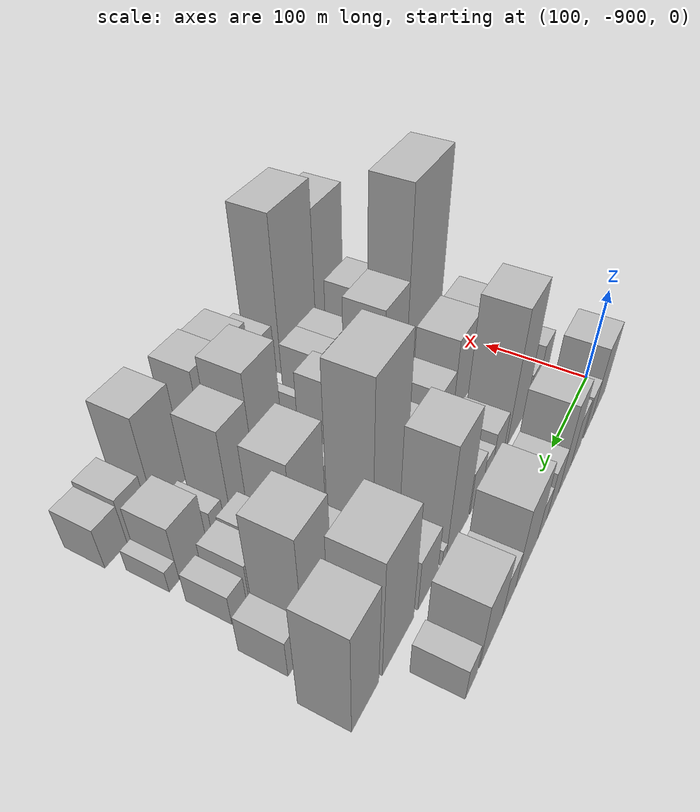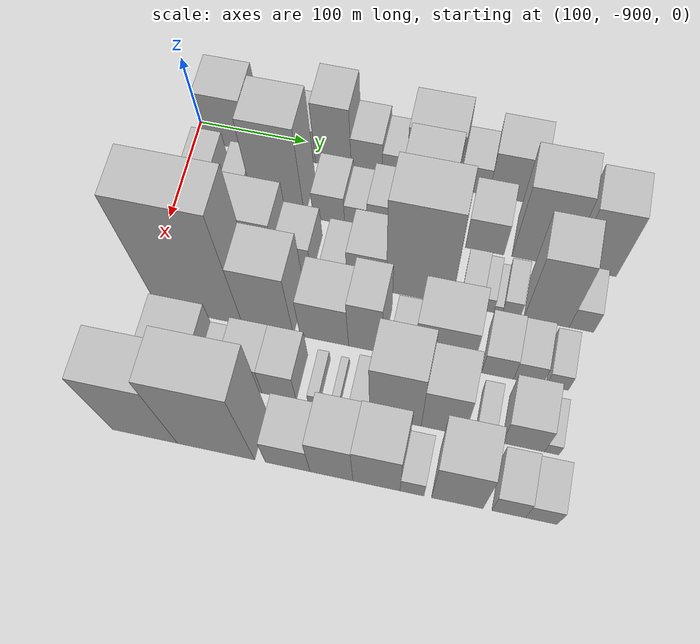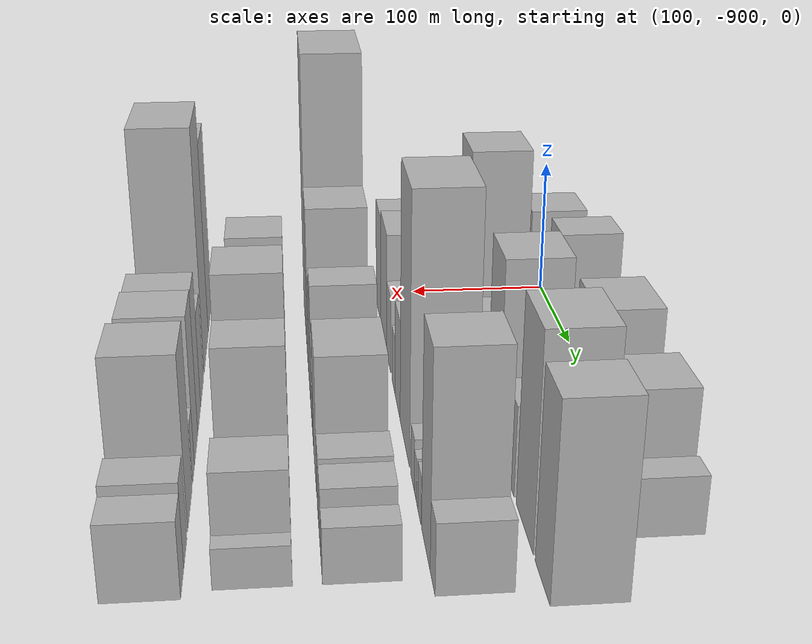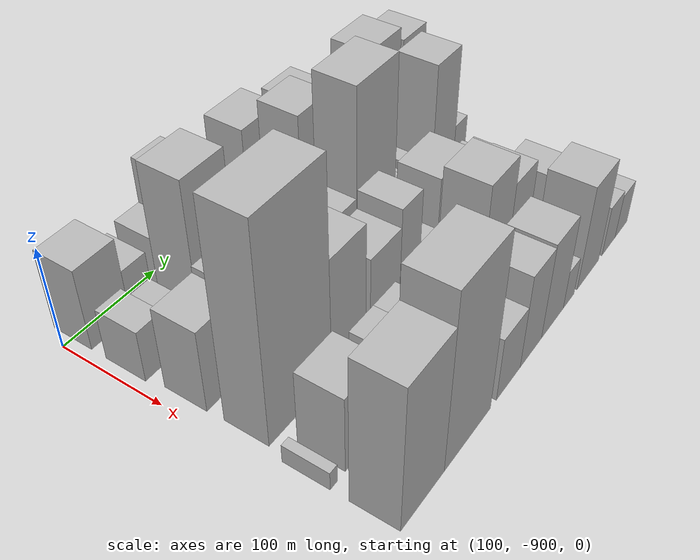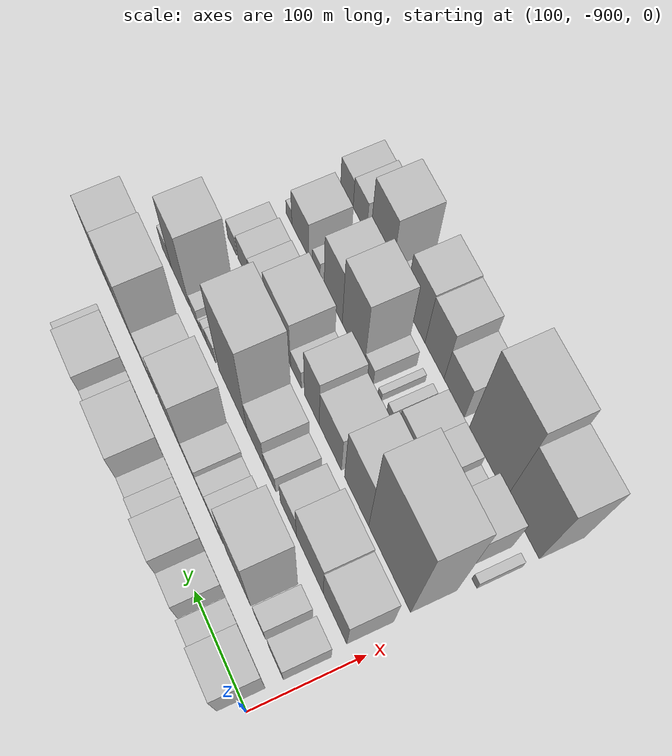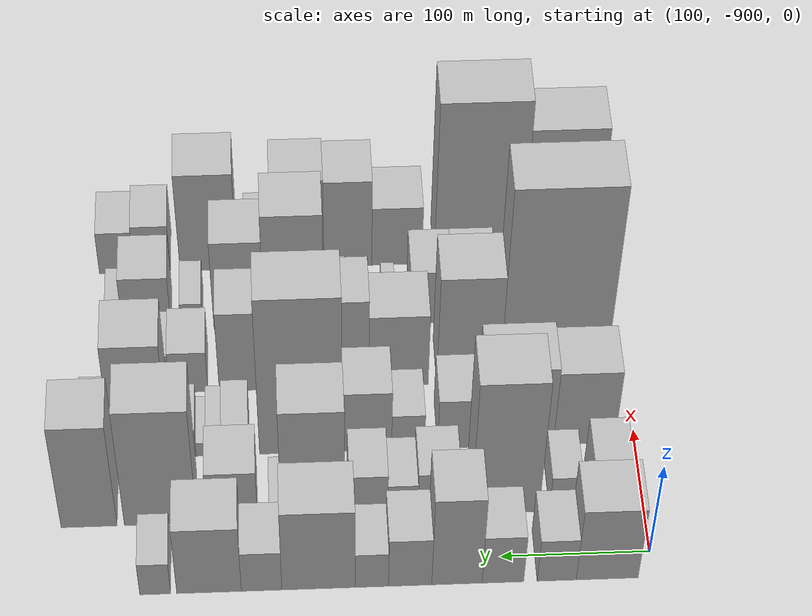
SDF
<sdf version="1.6">
 <world name="default">
  <model name="building_1">
   <static>1</static>
   <pose>100.0000 -869.3339 0 0.000000 0.000000 0.000000</pose>
   <link name="link">
    <pose>0 0 40.50 0 0 0</pose>
    <collision name="collision"><geometry><box><size>40.0000 41.3322 81.0000</size></box></geometry></collision>
    <visual name="visual">
     <cast_shadows>0</cast_shadows>
     <geometry><box><size>40.0000 41.3322 81.0000</size></box></geometry>
     <material>
      <script>
       <uri>model://HANNAS_wall/materials/scripts</uri>
       <uri>model://HANNAS_wall/materials/textures</uri>
       <name>vrc/HANNAS_wall</name>
      </script>
     </material>
    </visual>
   </link>
  </model>
  <model name="building_2">
   <static>1</static>
   <pose>100.0000 -835.6946 0 0.000000 0.000000 0.000000</pose>
   <link name="link">
    <pose>0 0 24.00 0 0 0</pose>
    <collision name="collision"><geometry><box><size>40.0000 25.9463 48.0000</size></box></geometry></collision>
    <visual name="visual">
     <cast_shadows>0</cast_shadows>
     <geometry><box><size>40.0000 25.9463 48.0000</size></box></geometry>
     <material>
      <script>
       <uri>model://HANNAS_wall/materials/scripts</uri>
       <uri>model://HANNAS_wall/materials/textures</uri>
       <name>vrc/HANNAS_wall</name>
      </script>
     </material>
    </visual>
   </link>
  </model>
  <model name="building_3">
   <static>1</static>
   <pose>100.0000 -799.8474 0 0.000000 0.000000 0.000000</pose>
   <link name="link">
    <pose>0 0 27.00 0 0 0</pose>
    <collision name="collision"><geometry><box><size>40.0000 27.7481 54.0000</size></box></geometry></collision>
    <visual name="visual">
     <cast_shadows>0</cast_shadows>
     <geometry><box><size>40.0000 27.7481 54.0000</size></box></geometry>
     <material>
      <script>
       <uri>model://HANNAS_wall/materials/scripts</uri>
       <uri>model://HANNAS_wall/materials/textures</uri>
       <name>vrc/HANNAS_wall</name>
      </script>
     </material>
    </visual>
   </link>
  </model>
  <model name="building_4">
   <static>1</static>
   <pose>100.0000 -769.2376 0 0.000000 0.000000 0.000000</pose>
   <link name="link">
    <pose>0 0 49.50 0 0 0</pose>
    <collision name="collision"><geometry><box><size>40.0000 33.4713 99.0000</size></box></geometry></collision>
    <visual name="visual">
     <cast_shadows>0</cast_shadows>
     <geometry><box><size>40.0000 33.4713 99.0000</size></box></geometry>
     <material>
      <script>
       <uri>model://HANNAS_wall/materials/scripts</uri>
       <uri>model://HANNAS_wall/materials/textures</uri>
       <name>vrc/HANNAS_wall</name>
      </script>
     </material>
    </visual>
   </link>
  </model>
  <model name="building_5">
   <static>1</static>
   <pose>100.0000 -738.1177 0 0.000000 0.000000 0.000000</pose>
   <link name="link">
    <pose>0 0 27.00 0 0 0</pose>
    <collision name="collision"><geometry><box><size>40.0000 28.7686 54.0000</size></box></geometry></collision>
    <visual name="visual">
     <cast_shadows>0</cast_shadows>
     <geometry><box><size>40.0000 28.7686 54.0000</size></box></geometry>
     <material>
      <script>
       <uri>model://HANNAS_wall/materials/scripts</uri>
       <uri>model://HANNAS_wall/materials/textures</uri>
       <name>vrc/HANNAS_wall</name>
      </script>
     </material>
    </visual>
   </link>
  </model>
  <model name="building_6">
   <static>1</static>
   <pose>100.0000 -712.6709 0 0.000000 0.000000 0.000000</pose>
   <link name="link">
    <pose>0 0 19.50 0 0 0</pose>
    <collision name="collision"><geometry><box><size>40.0000 22.1250 39.0000</size></box></geometry></collision>
    <visual name="visual">
     <cast_shadows>0</cast_shadows>
     <geometry><box><size>40.0000 22.1250 39.0000</size></box></geometry>
     <material>
      <script>
       <uri>model://HANNAS_wall/materials/scripts</uri>
       <uri>model://HANNAS_wall/materials/textures</uri>
       <name>vrc/HANNAS_wall</name>
      </script>
     </material>
    </visual>
   </link>
  </model>
  <model name="building_7">
   <static>1</static>
   <pose>100.0000 -677.2731 0 0.000000 0.000000 0.000000</pose>
   <link name="link">
    <pose>0 0 45.00 0 0 0</pose>
    <collision name="collision"><geometry><box><size>40.0000 48.6707 90.0000</size></box></geometry></collision>
    <visual name="visual">
     <cast_shadows>0</cast_shadows>
     <geometry><box><size>40.0000 48.6707 90.0000</size></box></geometry>
     <material>
      <script>
       <uri>model://HANNAS_wall/materials/scripts</uri>
       <uri>model://HANNAS_wall/materials/textures</uri>
       <name>vrc/HANNAS_wall</name>
      </script>
     </material>
    </visual>
   </link>
  </model>
  <model name="building_8">
   <static>1</static>
   <pose>100.0000 -639.5324 0 0.000000 0.000000 0.000000</pose>
   <link name="link">
    <pose>0 0 22.50 0 0 0</pose>
    <collision name="collision"><geometry><box><size>40.0000 26.8107 45.0000</size></box></geometry></collision>
    <visual name="visual">
     <cast_shadows>0</cast_shadows>
     <geometry><box><size>40.0000 26.8107 45.0000</size></box></geometry>
     <material>
      <script>
       <uri>model://HANNAS_wall/materials/scripts</uri>
       <uri>model://HANNAS_wall/materials/textures</uri>
       <name>vrc/HANNAS_wall</name>
      </script>
     </material>
    </visual>
   </link>
  </model>
  <model name="building_9">
   <static>1</static>
   <pose>100.0000 -604.7382 0 0.000000 0.000000 0.000000</pose>
   <link name="link">
    <pose>0 0 37.50 0 0 0</pose>
    <collision name="collision"><geometry><box><size>40.0000 42.7776 75.0000</size></box></geometry></collision>
    <visual name="visual">
     <cast_shadows>0</cast_shadows>
     <geometry><box><size>40.0000 42.7776 75.0000</size></box></geometry>
     <material>
      <script>
       <uri>model://HANNAS_wall/materials/scripts</uri>
       <uri>model://HANNAS_wall/materials/textures</uri>
       <name>vrc/HANNAS_wall</name>
      </script>
     </material>
    </visual>
   </link>
  </model>
  <model name="building_10">
   <static>1</static>
   <pose>100.0000 -569.1317 0 0.000000 0.000000 0.000000</pose>
   <link name="link">
    <pose>0 0 18.00 0 0 0</pose>
    <collision name="collision"><geometry><box><size>40.0000 20.4354 36.0000</size></box></geometry></collision>
    <visual name="visual">
     <cast_shadows>0</cast_shadows>
     <geometry><box><size>40.0000 20.4354 36.0000</size></box></geometry>
     <material>
      <script>
       <uri>model://HANNAS_wall/materials/scripts</uri>
       <uri>model://HANNAS_wall/materials/textures</uri>
       <name>vrc/HANNAS_wall</name>
      </script>
     </material>
    </visual>
   </link>
  </model>
  <model name="building_50">
   <static>1</static>
   <pose>155.0000 -876.7752 0 0.000000 0.000000 0.000000</pose>
   <link name="link">
    <pose>0 0 25.50 0 0 0</pose>
    <collision name="collision"><geometry><box><size>40.0000 26.4496 51.0000</size></box></geometry></collision>
    <visual name="visual">
     <cast_shadows>0</cast_shadows>
     <geometry><box><size>40.0000 26.4496 51.0000</size></box></geometry>
     <material>
      <script>
       <uri>model://HANNAS_wall/materials/scripts</uri>
       <uri>model://HANNAS_wall/materials/textures</uri>
       <name>vrc/HANNAS_wall</name>
      </script>
     </material>
    </visual>
   </link>
  </model>
  <model name="building_51">
   <static>1</static>
   <pose>155.0000 -846.1441 0 0.000000 0.000000 0.000000</pose>
   <link name="link">
    <pose>0 0 19.50 0 0 0</pose>
    <collision name="collision"><geometry><box><size>40.0000 20.8128 39.0000</size></box></geometry></collision>
    <visual name="visual">
     <cast_shadows>0</cast_shadows>
     <geometry><box><size>40.0000 20.8128 39.0000</size></box></geometry>
     <material>
      <script>
       <uri>model://HANNAS_wall/materials/scripts</uri>
       <uri>model://HANNAS_wall/materials/textures</uri>
       <name>vrc/HANNAS_wall</name>
      </script>
     </material>
    </visual>
   </link>
  </model>
  <model name="building_52">
   <static>1</static>
   <pose>155.0000 -805.7249 0 0.000000 0.000000 0.000000</pose>
   <link name="link">
    <pose>0 0 73.50 0 0 0</pose>
    <collision name="collision"><geometry><box><size>40.0000 46.0255 147.0000</size></box></geometry></collision>
    <visual name="visual">
     <cast_shadows>0</cast_shadows>
     <geometry><box><size>40.0000 46.0255 147.0000</size></box></geometry>
     <material>
      <script>
       <uri>model://HANNAS_wall/materials/scripts</uri>
       <uri>model://HANNAS_wall/materials/textures</uri>
       <name>vrc/HANNAS_wall</name>
      </script>
     </material>
    </visual>
   </link>
  </model>
  <model name="building_53">
   <static>1</static>
   <pose>155.0000 -760.4808 0 0.000000 0.000000 0.000000</pose>
   <link name="link">
    <pose>0 0 24.00 0 0 0</pose>
    <collision name="collision"><geometry><box><size>40.0000 28.4627 48.0000</size></box></geometry></collision>
    <visual name="visual">
     <cast_shadows>0</cast_shadows>
     <geometry><box><size>40.0000 28.4627 48.0000</size></box></geometry>
     <material>
      <script>
       <uri>model://HANNAS_wall/materials/scripts</uri>
       <uri>model://HANNAS_wall/materials/textures</uri>
       <name>vrc/HANNAS_wall</name>
      </script>
     </material>
    </visual>
   </link>
  </model>
  <model name="building_54">
   <static>1</static>
   <pose>155.0000 -736.1135 0 0.000000 0.000000 0.000000</pose>
   <link name="link">
    <pose>0 0 18.00 0 0 0</pose>
    <collision name="collision"><geometry><box><size>40.0000 20.2720 36.0000</size></box></geometry></collision>
    <visual name="visual">
     <cast_shadows>0</cast_shadows>
     <geometry><box><size>40.0000 20.2720 36.0000</size></box></geometry>
     <material>
      <script>
       <uri>model://HANNAS_wall/materials/scripts</uri>
       <uri>model://HANNAS_wall/materials/textures</uri>
       <name>vrc/HANNAS_wall</name>
      </script>
     </material>
    </visual>
   </link>
  </model>
  <model name="building_55">
   <static>1</static>
   <pose>155.0000 -712.9634 0 0.000000 0.000000 0.000000</pose>
   <link name="link">
    <pose>0 0 24.00 0 0 0</pose>
    <collision name="collision"><geometry><box><size>40.0000 26.0280 48.0000</size></box></geometry></collision>
    <visual name="visual">
     <cast_shadows>0</cast_shadows>
     <geometry><box><size>40.0000 26.0280 48.0000</size></box></geometry>
     <material>
      <script>
       <uri>model://HANNAS_wall/materials/scripts</uri>
       <uri>model://HANNAS_wall/materials/textures</uri>
       <name>vrc/HANNAS_wall</name>
      </script>
     </material>
    </visual>
   </link>
  </model>
  <model name="building_56">
   <static>1</static>
   <pose>155.0000 -675.3948 0 0.000000 0.000000 0.000000</pose>
   <link name="link">
    <pose>0 0 61.50 0 0 0</pose>
    <collision name="collision"><geometry><box><size>40.0000 43.1092 123.0000</size></box></geometry></collision>
    <visual name="visual">
     <cast_shadows>0</cast_shadows>
     <geometry><box><size>40.0000 43.1092 123.0000</size></box></geometry>
     <material>
      <script>
       <uri>model://HANNAS_wall/materials/scripts</uri>
       <uri>model://HANNAS_wall/materials/textures</uri>
       <name>vrc/HANNAS_wall</name>
      </script>
     </material>
    </visual>
   </link>
  </model>
  <model name="building_57">
   <static>1</static>
   <pose>155.0000 -649.8340 0 0.000000 0.000000 0.000000</pose>
   <link name="link">
    <pose>0 0 9.00 0 0 0</pose>
    <collision name="collision"><geometry><box><size>40.0000 8.0123 18.0000</size></box></geometry></collision>
    <visual name="visual">
     <cast_shadows>0</cast_shadows>
     <geometry><box><size>40.0000 8.0123 18.0000</size></box></geometry>
     <material>
      <script>
       <uri>model://HANNAS_wall/materials/scripts</uri>
       <uri>model://HANNAS_wall/materials/textures</uri>
       <name>vrc/HANNAS_wall</name>
      </script>
     </material>
    </visual>
   </link>
  </model>
  <model name="building_58">
   <static>1</static>
   <pose>155.0000 -620.7300 0 0.000000 0.000000 0.000000</pose>
   <link name="link">
    <pose>0 0 28.50 0 0 0</pose>
    <collision name="collision"><geometry><box><size>40.0000 34.1958 57.0000</size></box></geometry></collision>
    <visual name="visual">
     <cast_shadows>0</cast_shadows>
     <geometry><box><size>40.0000 34.1958 57.0000</size></box></geometry>
     <material>
      <script>
       <uri>model://HANNAS_wall/materials/scripts</uri>
       <uri>model://HANNAS_wall/materials/textures</uri>
       <name>vrc/HANNAS_wall</name>
      </script>
     </material>
    </visual>
   </link>
  </model>
  <model name="building_59">
   <static>1</static>
   <pose>155.0000 -572.2278 0 0.000000 0.000000 0.000000</pose>
   <link name="link">
    <pose>0 0 64.50 0 0 0</pose>
    <collision name="collision"><geometry><box><size>40.0000 48.8085 129.0000</size></box></geometry></collision>
    <visual name="visual">
     <cast_shadows>0</cast_shadows>
     <geometry><box><size>40.0000 48.8085 129.0000</size></box></geometry>
     <material>
      <script>
       <uri>model://HANNAS_wall/materials/scripts</uri>
       <uri>model://HANNAS_wall/materials/textures</uri>
       <name>vrc/HANNAS_wall</name>
      </script>
     </material>
    </visual>
   </link>
  </model>
  <model name="building_60">
   <static>1</static>
   <pose>155.0000 -523.9782 0 0.000000 0.000000 0.000000</pose>
   <link name="link">
    <pose>0 0 57.00 0 0 0</pose>
    <collision name="collision"><geometry><box><size>40.0000 37.6906 114.0000</size></box></geometry></collision>
    <visual name="visual">
     <cast_shadows>0</cast_shadows>
     <geometry><box><size>40.0000 37.6906 114.0000</size></box></geometry>
     <material>
      <script>
       <uri>model://HANNAS_wall/materials/scripts</uri>
       <uri>model://HANNAS_wall/materials/textures</uri>
       <name>vrc/HANNAS_wall</name>
      </script>
     </material>
    </visual>
   </link>
  </model>
  <model name="building_103">
   <static>1</static>
   <pose>210.0000 -864.6971 0 0.000000 0.000000 0.000000</pose>
   <link name="link">
    <pose>0 0 40.50 0 0 0</pose>
    <collision name="collision"><geometry><box><size>40.0000 42.6057 81.0000</size></box></geometry></collision>
    <visual name="visual">
     <cast_shadows>0</cast_shadows>
     <geometry><box><size>40.0000 42.6057 81.0000</size></box></geometry>
     <material>
      <script>
       <uri>model://HANNAS_wall/materials/scripts</uri>
       <uri>model://HANNAS_wall/materials/textures</uri>
       <name>vrc/HANNAS_wall</name>
      </script>
     </material>
    </visual>
   </link>
  </model>
  <model name="building_104">
   <static>1</static>
   <pose>210.0000 -818.5354 0 0.000000 0.000000 0.000000</pose>
   <link name="link">
    <pose>0 0 43.50 0 0 0</pose>
    <collision name="collision"><geometry><box><size>40.0000 49.7177 87.0000</size></box></geometry></collision>
    <visual name="visual">
     <cast_shadows>0</cast_shadows>
     <geometry><box><size>40.0000 49.7177 87.0000</size></box></geometry>
     <material>
      <script>
       <uri>model://HANNAS_wall/materials/scripts</uri>
       <uri>model://HANNAS_wall/materials/textures</uri>
       <name>vrc/HANNAS_wall</name>
      </script>
     </material>
    </visual>
   </link>
  </model>
  <model name="building_105">
   <static>1</static>
   <pose>210.0000 -778.3862 0 0.000000 0.000000 0.000000</pose>
   <link name="link">
    <pose>0 0 27.00 0 0 0</pose>
    <collision name="collision"><geometry><box><size>40.0000 30.5807 54.0000</size></box></geometry></collision>
    <visual name="visual">
     <cast_shadows>0</cast_shadows>
     <geometry><box><size>40.0000 30.5807 54.0000</size></box></geometry>
     <material>
      <script>
       <uri>model://HANNAS_wall/materials/scripts</uri>
       <uri>model://HANNAS_wall/materials/textures</uri>
       <name>vrc/HANNAS_wall</name>
      </script>
     </material>
    </visual>
   </link>
  </model>
  <model name="building_106">
   <static>1</static>
   <pose>210.0000 -742.6951 0 0.000000 0.000000 0.000000</pose>
   <link name="link">
    <pose>0 0 19.50 0 0 0</pose>
    <collision name="collision"><geometry><box><size>40.0000 22.8016 39.0000</size></box></geometry></collision>
    <visual name="visual">
     <cast_shadows>0</cast_shadows>
     <geometry><box><size>40.0000 22.8016 39.0000</size></box></geometry>
     <material>
      <script>
       <uri>model://HANNAS_wall/materials/scripts</uri>
       <uri>model://HANNAS_wall/materials/textures</uri>
       <name>vrc/HANNAS_wall</name>
      </script>
     </material>
    </visual>
   </link>
  </model>
  <model name="building_107">
   <static>1</static>
   <pose>210.0000 -714.2467 0 0.000000 0.000000 0.000000</pose>
   <link name="link">
    <pose>0 0 33.00 0 0 0</pose>
    <collision name="collision"><geometry><box><size>40.0000 34.0951 66.0000</size></box></geometry></collision>
    <visual name="visual">
     <cast_shadows>0</cast_shadows>
     <geometry><box><size>40.0000 34.0951 66.0000</size></box></geometry>
     <material>
      <script>
       <uri>model://HANNAS_wall/materials/scripts</uri>
       <uri>model://HANNAS_wall/materials/textures</uri>
       <name>vrc/HANNAS_wall</name>
      </script>
     </material>
    </visual>
   </link>
  </model>
  <model name="building_108">
   <static>1</static>
   <pose>210.0000 -668.6219 0 0.000000 0.000000 0.000000</pose>
   <link name="link">
    <pose>0 0 85.50 0 0 0</pose>
    <collision name="collision"><geometry><box><size>40.0000 57.1545 171.0000</size></box></geometry></collision>
    <visual name="visual">
     <cast_shadows>0</cast_shadows>
     <geometry><box><size>40.0000 57.1545 171.0000</size></box></geometry>
     <material>
      <script>
       <uri>model://HANNAS_wall/materials/scripts</uri>
       <uri>model://HANNAS_wall/materials/textures</uri>
       <name>vrc/HANNAS_wall</name>
      </script>
     </material>
    </visual>
   </link>
  </model>
  <model name="building_109">
   <static>1</static>
   <pose>210.0000 -623.7508 0 0.000000 0.000000 0.000000</pose>
   <link name="link">
    <pose>0 0 16.50 0 0 0</pose>
    <collision name="collision"><geometry><box><size>40.0000 18.5876 33.0000</size></box></geometry></collision>
    <visual name="visual">
     <cast_shadows>0</cast_shadows>
     <geometry><box><size>40.0000 18.5876 33.0000</size></box></geometry>
     <material>
      <script>
       <uri>model://HANNAS_wall/materials/scripts</uri>
       <uri>model://HANNAS_wall/materials/textures</uri>
       <name>vrc/HANNAS_wall</name>
      </script>
     </material>
    </visual>
   </link>
  </model>
  <model name="building_110">
   <static>1</static>
   <pose>210.0000 -609.0195 0 0.000000 0.000000 0.000000</pose>
   <link name="link">
    <pose>0 0 13.50 0 0 0</pose>
    <collision name="collision"><geometry><box><size>40.0000 10.8750 27.0000</size></box></geometry></collision>
    <visual name="visual">
     <cast_shadows>0</cast_shadows>
     <geometry><box><size>40.0000 10.8750 27.0000</size></box></geometry>
     <material>
      <script>
       <uri>model://HANNAS_wall/materials/scripts</uri>
       <uri>model://HANNAS_wall/materials/textures</uri>
       <name>vrc/HANNAS_wall</name>
      </script>
     </material>
    </visual>
   </link>
  </model>
  <model name="building_111">
   <static>1</static>
   <pose>210.0000 -599.9531 0 0.000000 0.000000 0.000000</pose>
   <link name="link">
    <pose>0 0 7.50 0 0 0</pose>
    <collision name="collision"><geometry><box><size>40.0000 7.2579 15.0000</size></box></geometry></collision>
    <visual name="visual">
     <cast_shadows>0</cast_shadows>
     <geometry><box><size>40.0000 7.2579 15.0000</size></box></geometry>
     <material>
      <script>
       <uri>model://HANNAS_wall/materials/scripts</uri>
       <uri>model://HANNAS_wall/materials/textures</uri>
       <name>vrc/HANNAS_wall</name>
      </script>
     </material>
    </visual>
   </link>
  </model>
  <model name="building_112">
   <static>1</static>
   <pose>210.0000 -588.4898 0 0.000000 0.000000 0.000000</pose>
   <link name="link">
    <pose>0 0 15.00 0 0 0</pose>
    <collision name="collision"><geometry><box><size>40.0000 15.6687 30.0000</size></box></geometry></collision>
    <visual name="visual">
     <cast_shadows>0</cast_shadows>
     <geometry><box><size>40.0000 15.6687 30.0000</size></box></geometry>
     <material>
      <script>
       <uri>model://HANNAS_wall/materials/scripts</uri>
       <uri>model://HANNAS_wall/materials/textures</uri>
       <name>vrc/HANNAS_wall</name>
      </script>
     </material>
    </visual>
   </link>
  </model>
  <model name="building_113">
   <static>1</static>
   <pose>210.0000 -558.2159 0 0.000000 0.000000 0.000000</pose>
   <link name="link">
    <pose>0 0 63.00 0 0 0</pose>
    <collision name="collision"><geometry><box><size>40.0000 38.8792 126.0000</size></box></geometry></collision>
    <visual name="visual">
     <cast_shadows>0</cast_shadows>
     <geometry><box><size>40.0000 38.8792 126.0000</size></box></geometry>
     <material>
      <script>
       <uri>model://HANNAS_wall/materials/scripts</uri>
       <uri>model://HANNAS_wall/materials/textures</uri>
       <name>vrc/HANNAS_wall</name>
      </script>
     </material>
    </visual>
   </link>
  </model>
  <model name="building_114">
   <static>1</static>
   <pose>210.0000 -528.2683 0 0.000000 0.000000 0.000000</pose>
   <link name="link">
    <pose>0 0 21.00 0 0 0</pose>
    <collision name="collision"><geometry><box><size>40.0000 21.0158 42.0000</size></box></geometry></collision>
    <visual name="visual">
     <cast_shadows>0</cast_shadows>
     <geometry><box><size>40.0000 21.0158 42.0000</size></box></geometry>
     <material>
      <script>
       <uri>model://HANNAS_wall/materials/scripts</uri>
       <uri>model://HANNAS_wall/materials/textures</uri>
       <name>vrc/HANNAS_wall</name>
      </script>
     </material>
    </visual>
   </link>
  </model>
  <model name="building_160">
   <static>1</static>
   <pose>265.0000 -847.6770 0 0.000000 0.000000 0.000000</pose>
   <link name="link">
    <pose>0 0 103.50 0 0 0</pose>
    <collision name="collision"><geometry><box><size>40.0000 74.6460 207.0000</size></box></geometry></collision>
    <visual name="visual">
     <cast_shadows>0</cast_shadows>
     <geometry><box><size>40.0000 74.6460 207.0000</size></box></geometry>
     <material>
      <script>
       <uri>model://HANNAS_wall/materials/scripts</uri>
       <uri>model://HANNAS_wall/materials/textures</uri>
       <name>vrc/HANNAS_wall</name>
      </script>
     </material>
    </visual>
   </link>
  </model>
  <model name="building_161">
   <static>1</static>
   <pose>265.0000 -788.0706 0 0.000000 0.000000 0.000000</pose>
   <link name="link">
    <pose>0 0 58.50 0 0 0</pose>
    <collision name="collision"><geometry><box><size>40.0000 44.5668 117.0000</size></box></geometry></collision>
    <visual name="visual">
     <cast_shadows>0</cast_shadows>
     <geometry><box><size>40.0000 44.5668 117.0000</size></box></geometry>
     <material>
      <script>
       <uri>model://HANNAS_wall/materials/scripts</uri>
       <uri>model://HANNAS_wall/materials/textures</uri>
       <name>vrc/HANNAS_wall</name>
      </script>
     </material>
    </visual>
   </link>
  </model>
  <model name="building_162">
   <static>1</static>
   <pose>265.0000 -738.9105 0 0.000000 0.000000 0.000000</pose>
   <link name="link">
    <pose>0 0 39.00 0 0 0</pose>
    <collision name="collision"><geometry><box><size>40.0000 41.7534 78.0000</size></box></geometry></collision>
    <visual name="visual">
     <cast_shadows>0</cast_shadows>
     <geometry><box><size>40.0000 41.7534 78.0000</size></box></geometry>
     <material>
      <script>
       <uri>model://HANNAS_wall/materials/scripts</uri>
       <uri>model://HANNAS_wall/materials/textures</uri>
       <name>vrc/HANNAS_wall</name>
      </script>
     </material>
    </visual>
   </link>
  </model>
  <model name="building_163">
   <static>1</static>
   <pose>265.0000 -703.5271 0 0.000000 0.000000 0.000000</pose>
   <link name="link">
    <pose>0 0 48.00 0 0 0</pose>
    <collision name="collision"><geometry><box><size>40.0000 29.0134 96.0000</size></box></geometry></collision>
    <visual name="visual">
     <cast_shadows>0</cast_shadows>
     <geometry><box><size>40.0000 29.0134 96.0000</size></box></geometry>
     <material>
      <script>
       <uri>model://HANNAS_wall/materials/scripts</uri>
       <uri>model://HANNAS_wall/materials/textures</uri>
       <name>vrc/HANNAS_wall</name>
      </script>
     </material>
    </visual>
   </link>
  </model>
  <model name="building_164">
   <static>1</static>
   <pose>265.0000 -672.4596 0 0.000000 0.000000 0.000000</pose>
   <link name="link">
    <pose>0 0 18.00 0 0 0</pose>
    <collision name="collision"><geometry><box><size>40.0000 21.1217 36.0000</size></box></geometry></collision>
    <visual name="visual">
     <cast_shadows>0</cast_shadows>
     <geometry><box><size>40.0000 21.1217 36.0000</size></box></geometry>
     <material>
      <script>
       <uri>model://HANNAS_wall/materials/scripts</uri>
       <uri>model://HANNAS_wall/materials/textures</uri>
       <name>vrc/HANNAS_wall</name>
      </script>
     </material>
    </visual>
   </link>
  </model>
  <model name="building_165">
   <static>1</static>
   <pose>265.0000 -637.2349 0 0.000000 0.000000 0.000000</pose>
   <link name="link">
    <pose>0 0 43.50 0 0 0</pose>
    <collision name="collision"><geometry><box><size>40.0000 49.3276 87.0000</size></box></geometry></collision>
    <visual name="visual">
     <cast_shadows>0</cast_shadows>
     <geometry><box><size>40.0000 49.3276 87.0000</size></box></geometry>
     <material>
      <script>
       <uri>model://HANNAS_wall/materials/scripts</uri>
       <uri>model://HANNAS_wall/materials/textures</uri>
       <name>vrc/HANNAS_wall</name>
      </script>
     </material>
    </visual>
   </link>
  </model>
  <model name="building_166">
   <static>1</static>
   <pose>265.0000 -591.1551 0 0.000000 0.000000 0.000000</pose>
   <link name="link">
    <pose>0 0 22.50 0 0 0</pose>
    <collision name="collision"><geometry><box><size>40.0000 26.8320 45.0000</size></box></geometry></collision>
    <visual name="visual">
     <cast_shadows>0</cast_shadows>
     <geometry><box><size>40.0000 26.8320 45.0000</size></box></geometry>
     <material>
      <script>
       <uri>model://HANNAS_wall/materials/scripts</uri>
       <uri>model://HANNAS_wall/materials/textures</uri>
       <name>vrc/HANNAS_wall</name>
      </script>
     </material>
    </visual>
   </link>
  </model>
  <model name="building_167">
   <static>1</static>
   <pose>265.0000 -565.5742 0 0.000000 0.000000 0.000000</pose>
   <link name="link">
    <pose>0 0 21.00 0 0 0</pose>
    <collision name="collision"><geometry><box><size>40.0000 24.3297 42.0000</size></box></geometry></collision>
    <visual name="visual">
     <cast_shadows>0</cast_shadows>
     <geometry><box><size>40.0000 24.3297 42.0000</size></box></geometry>
     <material>
      <script>
       <uri>model://HANNAS_wall/materials/scripts</uri>
       <uri>model://HANNAS_wall/materials/textures</uri>
       <name>vrc/HANNAS_wall</name>
      </script>
     </material>
    </visual>
   </link>
  </model>
  <model name="building_168">
   <static>1</static>
   <pose>265.0000 -541.1383 0 0.000000 0.000000 0.000000</pose>
   <link name="link">
    <pose>0 0 16.50 0 0 0</pose>
    <collision name="collision"><geometry><box><size>40.0000 18.5421 33.0000</size></box></geometry></collision>
    <visual name="visual">
     <cast_shadows>0</cast_shadows>
     <geometry><box><size>40.0000 18.5421 33.0000</size></box></geometry>
     <material>
      <script>
       <uri>model://HANNAS_wall/materials/scripts</uri>
       <uri>model://HANNAS_wall/materials/textures</uri>
       <name>vrc/HANNAS_wall</name>
      </script>
     </material>
    </visual>
   </link>
  </model>
  <model name="building_210">
   <static>1</static>
   <pose>320.0000 -885.7563 0 0.000000 0.000000 0.000000</pose>
   <link name="link">
    <pose>0 0 9.00 0 0 0</pose>
    <collision name="collision"><geometry><box><size>40.0000 8.4874 18.0000</size></box></geometry></collision>
    <visual name="visual">
     <cast_shadows>0</cast_shadows>
     <geometry><box><size>40.0000 8.4874 18.0000</size></box></geometry>
     <material>
      <script>
       <uri>model://HANNAS_wall/materials/scripts</uri>
       <uri>model://HANNAS_wall/materials/textures</uri>
       <name>vrc/HANNAS_wall</name>
      </script>
     </material>
    </visual>
   </link>
  </model>
  <model name="building_211">
   <static>1</static>
   <pose>320.0000 -850.6613 0 0.000000 0.000000 0.000000</pose>
   <link name="link">
    <pose>0 0 37.50 0 0 0</pose>
    <collision name="collision"><geometry><box><size>40.0000 43.7027 75.0000</size></box></geometry></collision>
    <visual name="visual">
     <cast_shadows>0</cast_shadows>
     <geometry><box><size>40.0000 43.7027 75.0000</size></box></geometry>
     <material>
      <script>
       <uri>model://HANNAS_wall/materials/scripts</uri>
       <uri>model://HANNAS_wall/materials/textures</uri>
       <name>vrc/HANNAS_wall</name>
      </script>
     </material>
    </visual>
   </link>
  </model>
  <model name="building_212">
   <static>1</static>
   <pose>320.0000 -819.3262 0 0.000000 0.000000 0.000000</pose>
   <link name="link">
    <pose>0 0 18.00 0 0 0</pose>
    <collision name="collision"><geometry><box><size>40.0000 18.9674 36.0000</size></box></geometry></collision>
    <visual name="visual">
     <cast_shadows>0</cast_shadows>
     <geometry><box><size>40.0000 18.9674 36.0000</size></box></geometry>
     <material>
      <script>
       <uri>model://HANNAS_wall/materials/scripts</uri>
       <uri>model://HANNAS_wall/materials/textures</uri>
       <name>vrc/HANNAS_wall</name>
      </script>
     </material>
    </visual>
   </link>
  </model>
  <model name="building_213">
   <static>1</static>
   <pose>320.0000 -794.3411 0 0.000000 0.000000 0.000000</pose>
   <link name="link">
    <pose>0 0 28.50 0 0 0</pose>
    <collision name="collision"><geometry><box><size>40.0000 31.0028 57.0000</size></box></geometry></collision>
    <visual name="visual">
     <cast_shadows>0</cast_shadows>
     <geometry><box><size>40.0000 31.0028 57.0000</size></box></geometry>
     <material>
      <script>
       <uri>model://HANNAS_wall/materials/scripts</uri>
       <uri>model://HANNAS_wall/materials/textures</uri>
       <name>vrc/HANNAS_wall</name>
      </script>
     </material>
    </visual>
   </link>
  </model>
  <model name="building_214">
   <static>1</static>
   <pose>320.0000 -764.3163 0 0.000000 0.000000 0.000000</pose>
   <link name="link">
    <pose>0 0 28.50 0 0 0</pose>
    <collision name="collision"><geometry><box><size>40.0000 29.0469 57.0000</size></box></geometry></collision>
    <visual name="visual">
     <cast_shadows>0</cast_shadows>
     <geometry><box><size>40.0000 29.0469 57.0000</size></box></geometry>
     <material>
      <script>
       <uri>model://HANNAS_wall/materials/scripts</uri>
       <uri>model://HANNAS_wall/materials/textures</uri>
       <name>vrc/HANNAS_wall</name>
      </script>
     </material>
    </visual>
   </link>
  </model>
  <model name="building_215">
   <static>1</static>
   <pose>320.0000 -735.0532 0 0.000000 0.000000 0.000000</pose>
   <link name="link">
    <pose>0 0 10.50 0 0 0</pose>
    <collision name="collision"><geometry><box><size>40.0000 9.4793 21.0000</size></box></geometry></collision>
    <visual name="visual">
     <cast_shadows>0</cast_shadows>
     <geometry><box><size>40.0000 9.4793 21.0000</size></box></geometry>
     <material>
      <script>
       <uri>model://HANNAS_wall/materials/scripts</uri>
       <uri>model://HANNAS_wall/materials/textures</uri>
       <name>vrc/HANNAS_wall</name>
      </script>
     </material>
    </visual>
   </link>
  </model>
  <model name="building_216">
   <static>1</static>
   <pose>320.0000 -716.9344 0 0.000000 0.000000 0.000000</pose>
   <link name="link">
    <pose>0 0 7.50 0 0 0</pose>
    <collision name="collision"><geometry><box><size>40.0000 6.7583 15.0000</size></box></geometry></collision>
    <visual name="visual">
     <cast_shadows>0</cast_shadows>
     <geometry><box><size>40.0000 6.7583 15.0000</size></box></geometry>
     <material>
      <script>
       <uri>model://HANNAS_wall/materials/scripts</uri>
       <uri>model://HANNAS_wall/materials/textures</uri>
       <name>vrc/HANNAS_wall</name>
      </script>
     </material>
    </visual>
   </link>
  </model>
  <model name="building_217">
   <static>1</static>
   <pose>320.0000 -696.2472 0 0.000000 0.000000 0.000000</pose>
   <link name="link">
    <pose>0 0 15.00 0 0 0</pose>
    <collision name="collision"><geometry><box><size>40.0000 16.6160 30.0000</size></box></geometry></collision>
    <visual name="visual">
     <cast_shadows>0</cast_shadows>
     <geometry><box><size>40.0000 16.6160 30.0000</size></box></geometry>
     <material>
      <script>
       <uri>model://HANNAS_wall/materials/scripts</uri>
       <uri>model://HANNAS_wall/materials/textures</uri>
       <name>vrc/HANNAS_wall</name>
      </script>
     </material>
    </visual>
   </link>
  </model>
  <model name="building_218">
   <static>1</static>
   <pose>320.0000 -666.5266 0 0.000000 0.000000 0.000000</pose>
   <link name="link">
    <pose>0 0 61.50 0 0 0</pose>
    <collision name="collision"><geometry><box><size>40.0000 42.8252 123.0000</size></box></geometry></collision>
    <visual name="visual">
     <cast_shadows>0</cast_shadows>
     <geometry><box><size>40.0000 42.8252 123.0000</size></box></geometry>
     <material>
      <script>
       <uri>model://HANNAS_wall/materials/scripts</uri>
       <uri>model://HANNAS_wall/materials/textures</uri>
       <name>vrc/HANNAS_wall</name>
      </script>
     </material>
    </visual>
   </link>
  </model>
  <model name="building_219">
   <static>1</static>
   <pose>320.0000 -627.1581 0 0.000000 0.000000 0.000000</pose>
   <link name="link">
    <pose>0 0 48.00 0 0 0</pose>
    <collision name="collision"><geometry><box><size>40.0000 35.9118 96.0000</size></box></geometry></collision>
    <visual name="visual">
     <cast_shadows>0</cast_shadows>
     <geometry><box><size>40.0000 35.9118 96.0000</size></box></geometry>
     <material>
      <script>
       <uri>model://HANNAS_wall/materials/scripts</uri>
       <uri>model://HANNAS_wall/materials/textures</uri>
       <name>vrc/HANNAS_wall</name>
      </script>
     </material>
    </visual>
   </link>
  </model>
  <model name="building_220">
   <static>1</static>
   <pose>320.0000 -593.3548 0 0.000000 0.000000 0.000000</pose>
   <link name="link">
    <pose>0 0 15.00 0 0 0</pose>
    <collision name="collision"><geometry><box><size>40.0000 15.6949 30.0000</size></box></geometry></collision>
    <visual name="visual">
     <cast_shadows>0</cast_shadows>
     <geometry><box><size>40.0000 15.6949 30.0000</size></box></geometry>
     <material>
      <script>
       <uri>model://HANNAS_wall/materials/scripts</uri>
       <uri>model://HANNAS_wall/materials/textures</uri>
       <name>vrc/HANNAS_wall</name>
      </script>
     </material>
    </visual>
   </link>
  </model>
  <model name="building_221">
   <static>1</static>
   <pose>320.0000 -561.1284 0 0.000000 0.000000 0.000000</pose>
   <link name="link">
    <pose>0 0 30.00 0 0 0</pose>
    <collision name="collision"><geometry><box><size>40.0000 34.7579 60.0000</size></box></geometry></collision>
    <visual name="visual">
     <cast_shadows>0</cast_shadows>
     <geometry><box><size>40.0000 34.7579 60.0000</size></box></geometry>
     <material>
      <script>
       <uri>model://HANNAS_wall/materials/scripts</uri>
       <uri>model://HANNAS_wall/materials/textures</uri>
       <name>vrc/HANNAS_wall</name>
      </script>
     </material>
    </visual>
   </link>
  </model>
  <model name="building_222">
   <static>1</static>
   <pose>320.0000 -537.8728 0 0.000000 0.000000 0.000000</pose>
   <link name="link">
    <pose>0 0 12.00 0 0 0</pose>
    <collision name="collision"><geometry><box><size>40.0000 11.7533 24.0000</size></box></geometry></collision>
    <visual name="visual">
     <cast_shadows>0</cast_shadows>
     <geometry><box><size>40.0000 11.7533 24.0000</size></box></geometry>
     <material>
      <script>
       <uri>model://HANNAS_wall/materials/scripts</uri>
       <uri>model://HANNAS_wall/materials/textures</uri>
       <name>vrc/HANNAS_wall</name>
      </script>
     </material>
    </visual>
   </link>
  </model>
  <model name="building_266">
   <static>1</static>
   <pose>375.0000 -862.6387 0 0.000000 0.000000 0.000000</pose>
   <link name="link">
    <pose>0 0 70.50 0 0 0</pose>
    <collision name="collision"><geometry><box><size>40.0000 54.7227 141.0000</size></box></geometry></collision>
    <visual name="visual">
     <cast_shadows>0</cast_shadows>
     <geometry><box><size>40.0000 54.7227 141.0000</size></box></geometry>
     <material>
      <script>
       <uri>model://HANNAS_wall/materials/scripts</uri>
       <uri>model://HANNAS_wall/materials/textures</uri>
       <name>vrc/HANNAS_wall</name>
      </script>
     </material>
    </visual>
   </link>
  </model>
  <model name="building_267">
   <static>1</static>
   <pose>375.0000 -802.9643 0 0.000000 0.000000 0.000000</pose>
   <link name="link">
    <pose>0 0 85.50 0 0 0</pose>
    <collision name="collision"><geometry><box><size>40.0000 64.6261 171.0000</size></box></geometry></collision>
    <visual name="visual">
     <cast_shadows>0</cast_shadows>
     <geometry><box><size>40.0000 64.6261 171.0000</size></box></geometry>
     <material>
      <script>
       <uri>model://HANNAS_wall/materials/scripts</uri>
       <uri>model://HANNAS_wall/materials/textures</uri>
       <name>vrc/HANNAS_wall</name>
      </script>
     </material>
    </visual>
   </link>
  </model>
  <model name="building_268">
   <static>1</static>
   <pose>375.0000 -743.2627 0 0.000000 0.000000 0.000000</pose>
   <link name="link">
    <pose>0 0 31.50 0 0 0</pose>
    <collision name="collision"><geometry><box><size>40.0000 36.7771 63.0000</size></box></geometry></collision>
    <visual name="visual">
     <cast_shadows>0</cast_shadows>
     <geometry><box><size>40.0000 36.7771 63.0000</size></box></geometry>
     <material>
      <script>
       <uri>model://HANNAS_wall/materials/scripts</uri>
       <uri>model://HANNAS_wall/materials/textures</uri>
       <name>vrc/HANNAS_wall</name>
      </script>
     </material>
    </visual>
   </link>
  </model>
  <model name="building_269">
   <static>1</static>
   <pose>375.0000 -707.3267 0 0.000000 0.000000 0.000000</pose>
   <link name="link">
    <pose>0 0 46.50 0 0 0</pose>
    <collision name="collision"><geometry><box><size>40.0000 35.0949 93.0000</size></box></geometry></collision>
    <visual name="visual">
     <cast_shadows>0</cast_shadows>
     <geometry><box><size>40.0000 35.0949 93.0000</size></box></geometry>
     <material>
      <script>
       <uri>model://HANNAS_wall/materials/scripts</uri>
       <uri>model://HANNAS_wall/materials/textures</uri>
       <name>vrc/HANNAS_wall</name>
      </script>
     </material>
    </visual>
   </link>
  </model>
  <model name="building_270">
   <static>1</static>
   <pose>375.0000 -670.7085 0 0.000000 0.000000 0.000000</pose>
   <link name="link">
    <pose>0 0 48.00 0 0 0</pose>
    <collision name="collision"><geometry><box><size>40.0000 38.1414 96.0000</size></box></geometry></collision>
    <visual name="visual">
     <cast_shadows>0</cast_shadows>
     <geometry><box><size>40.0000 38.1414 96.0000</size></box></geometry>
     <material>
      <script>
       <uri>model://HANNAS_wall/materials/scripts</uri>
       <uri>model://HANNAS_wall/materials/textures</uri>
       <name>vrc/HANNAS_wall</name>
      </script>
     </material>
    </visual>
   </link>
  </model>
  <model name="building_271">
   <static>1</static>
   <pose>375.0000 -641.8627 0 0.000000 0.000000 0.000000</pose>
   <link name="link">
    <pose>0 0 19.50 0 0 0</pose>
    <collision name="collision"><geometry><box><size>40.0000 19.5502 39.0000</size></box></geometry></collision>
    <visual name="visual">
     <cast_shadows>0</cast_shadows>
     <geometry><box><size>40.0000 19.5502 39.0000</size></box></geometry>
     <material>
      <script>
       <uri>model://HANNAS_wall/materials/scripts</uri>
       <uri>model://HANNAS_wall/materials/textures</uri>
       <name>vrc/HANNAS_wall</name>
      </script>
     </material>
    </visual>
   </link>
  </model>
  <model name="building_272">
   <static>1</static>
   <pose>375.0000 -605.3630 0 0.000000 0.000000 0.000000</pose>
   <link name="link">
    <pose>0 0 52.50 0 0 0</pose>
    <collision name="collision"><geometry><box><size>40.0000 41.4492 105.0000</size></box></geometry></collision>
    <visual name="visual">
     <cast_shadows>0</cast_shadows>
     <geometry><box><size>40.0000 41.4492 105.0000</size></box></geometry>
     <material>
      <script>
       <uri>model://HANNAS_wall/materials/scripts</uri>
       <uri>model://HANNAS_wall/materials/textures</uri>
       <name>vrc/HANNAS_wall</name>
      </script>
     </material>
    </visual>
   </link>
  </model>
  <model name="building_273">
   <static>1</static>
   <pose>375.0000 -564.2975 0 0.000000 0.000000 0.000000</pose>
   <link name="link">
    <pose>0 0 25.50 0 0 0</pose>
    <collision name="collision"><geometry><box><size>40.0000 26.6817 51.0000</size></box></geometry></collision>
    <visual name="visual">
     <cast_shadows>0</cast_shadows>
     <geometry><box><size>40.0000 26.6817 51.0000</size></box></geometry>
     <material>
      <script>
       <uri>model://HANNAS_wall/materials/scripts</uri>
       <uri>model://HANNAS_wall/materials/textures</uri>
       <name>vrc/HANNAS_wall</name>
      </script>
     </material>
    </visual>
   </link>
  </model>
  <model name="building_274">
   <static>1</static>
   <pose>375.0000 -538.3322 0 0.000000 0.000000 0.000000</pose>
   <link name="link">
    <pose>0 0 22.50 0 0 0</pose>
    <collision name="collision"><geometry><box><size>40.0000 25.2489 45.0000</size></box></geometry></collision>
    <visual name="visual">
     <cast_shadows>0</cast_shadows>
     <geometry><box><size>40.0000 25.2489 45.0000</size></box></geometry>
     <material>
      <script>
       <uri>model://HANNAS_wall/materials/scripts</uri>
       <uri>model://HANNAS_wall/materials/textures</uri>
       <name>vrc/HANNAS_wall</name>
      </script>
     </material>
    </visual>
   </link>
  </model>
 </world>
</sdf>
